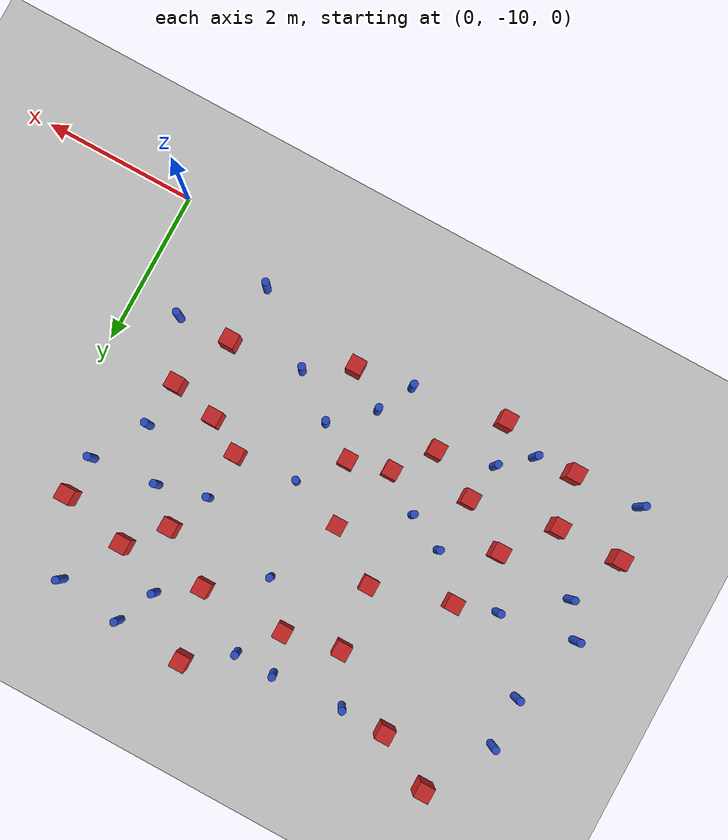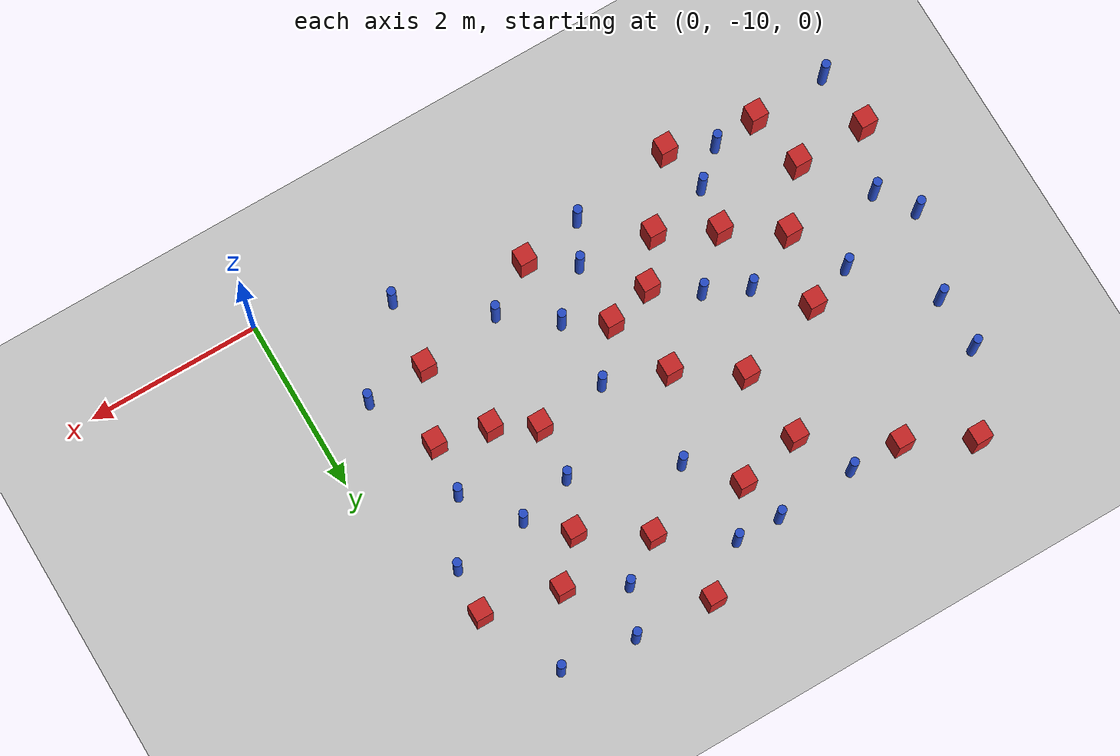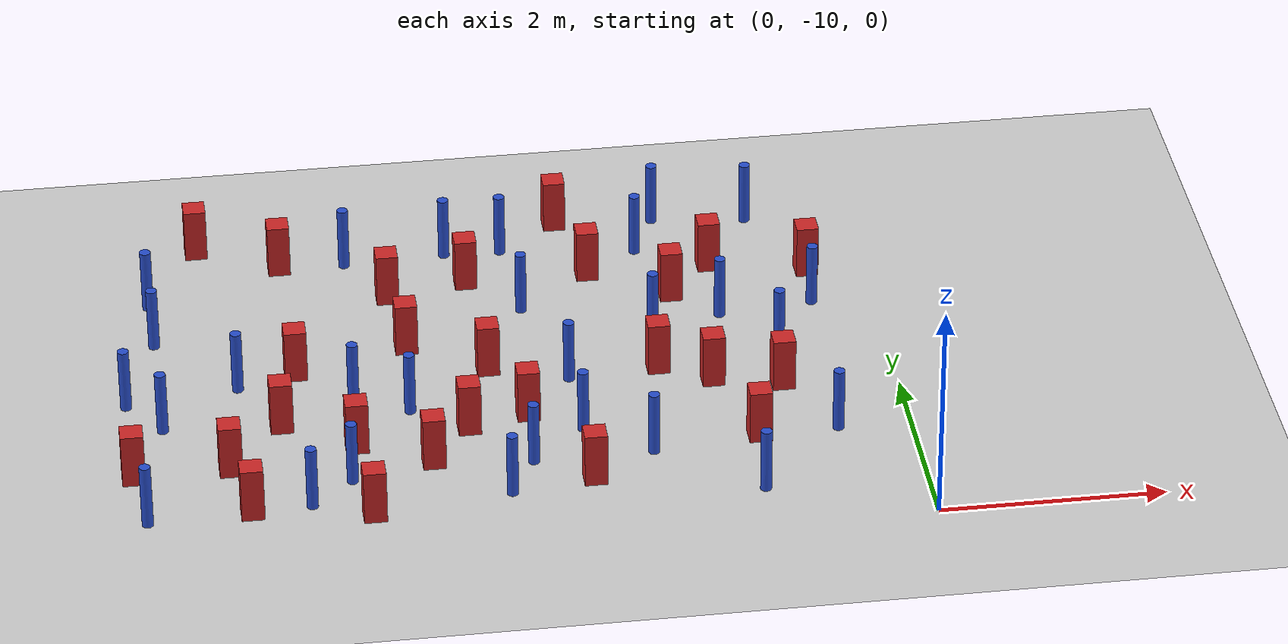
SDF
<sdf version="1.6">
 <world name="default">
  <model name="ground_plane">
   <static>1</static>
   <link name="link">
    <collision name="collision">
     <geometry><plane><normal>0 0 1</normal><size>100 100</size></plane></geometry>
     <surface><friction><ode><mu>100</mu><mu2>50</mu2></ode></friction></surface>
    </collision>
    <visual name="visual">
     <cast_shadows>0</cast_shadows>
     <geometry><plane><normal>0 0 1</normal><size>100 100</size></plane></geometry>
     <material>
      <ambient>1.0 1.0 1.0 1.0</ambient>
      <diffuse>0.8 0.8 0.8 1.0</diffuse>
      <specular>0.01 0.01 0.01 1.000000</specular>
     </material>
    </visual>
   </link>
  </model>
  <model name="pole_obstacle2">
   <static>true</static>
   <pose>-6.52942760812 -7.87029233997 7.38925637345e-09 -8.47170692796e-08 1.24976764786e-08 -1.74513093032e-07</pose>
   <link name="link">
    <pose>0 0 0.3 0 -0 0</pose>
    <inertial>
     <mass>1</mass>
     <inertia><ixx>0.145833</ixx><ixy>0</ixy><ixz>0</ixz><iyy>0.145833</iyy><iyz>0</iyz><izz>0.125</izz></inertia>
    </inertial>
    <collision name="collision">
     <geometry><cylinder><radius>0.05</radius><length>.6</length></cylinder></geometry>
    </collision>
    <visual name="visual">
     <geometry><cylinder><radius>0.05</radius><length>.6</length></cylinder></geometry>
     <material>
      <script><name>Gazebo/Blue</name><uri>file://media/materials/scripts/gazebo.material</uri></script>
     </material>
    </visual>
   </link>
  </model>
  <model name="square_post_obstacle4">
   <static>true</static>
   <pose>-1.02656893311 -7.87101364977 1.91545236811e-07 -7.35059704564e-06 1.12565212e-07 2.39332434364e-05</pose>
   <link name="link">
    <pose>0 0 0.25 0 -0 0</pose>
    <inertial>
     <mass>100</mass>
     <inertia>
      <ixx>0.166667</ixx>
      <ixy>0</ixy>
      <ixz>0</ixz>
      <iyy>0.166667</iyy>
      <iyz>0</iyz>
      <izz>0.166667</izz>
     </inertia>
    </inertial>
    <collision name="collision"><geometry><box><size>.2 .2 .5</size></box></geometry></collision>
    <visual name="visual">
     <geometry><box><size>.2 .2 .5</size></box></geometry>
     <material>
      <script><name>Gazebo/Red</name><uri>file://media/materials/scripts/gazebo.material</uri></script>
     </material>
    </visual>
   </link>
  </model>
  <model name="pole_obstacle6">
   <static>true</static>
   <pose>-4.82827708982 -7.62652021731 7.38925637345e-09 -8.47170692796e-08 1.24976764786e-08 -1.74513093032e-07</pose>
   <link name="link">
    <pose>0 0 0.3 0 -0 0</pose>
    <inertial>
     <mass>1</mass>
     <inertia><ixx>0.145833</ixx><ixy>0</ixy><ixz>0</ixz><iyy>0.145833</iyy><iyz>0</iyz><izz>0.125</izz></inertia>
    </inertial>
    <collision name="collision">
     <geometry><cylinder><radius>0.05</radius><length>.6</length></cylinder></geometry>
    </collision>
    <visual name="visual">
     <geometry><cylinder><radius>0.05</radius><length>.6</length></cylinder></geometry>
     <material>
      <script><name>Gazebo/Blue</name><uri>file://media/materials/scripts/gazebo.material</uri></script>
     </material>
    </visual>
   </link>
  </model>
  <model name="square_post_obstacle12">
   <static>true</static>
   <pose>-2.0900480813 -7.46458261331 1.91545236811e-07 -7.35059704564e-06 1.12565212e-07 2.39332434364e-05</pose>
   <link name="link">
    <pose>0 0 0.25 0 -0 0</pose>
    <inertial>
     <mass>100</mass>
     <inertia>
      <ixx>0.166667</ixx>
      <ixy>0</ixy>
      <ixz>0</ixz>
      <iyy>0.166667</iyy>
      <iyz>0</iyz>
      <izz>0.166667</izz>
     </inertia>
    </inertial>
    <collision name="collision"><geometry><box><size>.2 .2 .5</size></box></geometry></collision>
    <visual name="visual">
     <geometry><box><size>.2 .2 .5</size></box></geometry>
     <material>
      <script><name>Gazebo/Red</name><uri>file://media/materials/scripts/gazebo.material</uri></script>
     </material>
    </visual>
   </link>
  </model>
  <model name="square_post_obstacle15">
   <static>true</static>
   <pose>-3.32703613505 -8.05833563639 1.91545236811e-07 -7.35059704564e-06 1.12565212e-07 2.39332434364e-05</pose>
   <link name="link">
    <pose>0 0 0.25 0 -0 0</pose>
    <inertial>
     <mass>100</mass>
     <inertia>
      <ixx>0.166667</ixx>
      <ixy>0</ixy>
      <ixz>0</ixz>
      <iyy>0.166667</iyy>
      <iyz>0</iyz>
      <izz>0.166667</izz>
     </inertia>
    </inertial>
    <collision name="collision"><geometry><box><size>.2 .2 .5</size></box></geometry></collision>
    <visual name="visual">
     <geometry><box><size>.2 .2 .5</size></box></geometry>
     <material>
      <script><name>Gazebo/Red</name><uri>file://media/materials/scripts/gazebo.material</uri></script>
     </material>
    </visual>
   </link>
  </model>
  <model name="pole_obstacle12">
   <static>true</static>
   <pose>-2.89692893605 -7.53343433619 7.38925637345e-09 -8.47170692798e-08 1.24976765033e-08 -1.74513093019e-07</pose>
   <link name="link">
    <pose>0 0 0.3 0 -0 0</pose>
    <inertial>
     <mass>1</mass>
     <inertia><ixx>0.145833</ixx><ixy>0</ixy><ixz>0</ixz><iyy>0.145833</iyy><iyz>0</iyz><izz>0.125</izz></inertia>
    </inertial>
    <collision name="collision">
     <geometry><cylinder><radius>0.05</radius><length>.6</length></cylinder></geometry>
    </collision>
    <visual name="visual">
     <geometry><cylinder><radius>0.05</radius><length>.6</length></cylinder></geometry>
     <material>
      <script><name>Gazebo/Blue</name><uri>file://media/materials/scripts/gazebo.material</uri></script>
     </material>
    </visual>
   </link>
  </model>
  <model name="square_post_obstacle28">
   <static>true</static>
   <pose>-5.30732797405 -5.37208516619 1.91545236811e-07 -7.35059704564e-06 1.12565212e-07 2.39332434364e-05</pose>
   <link name="link">
    <pose>0 0 0.25 0 -0 0</pose>
    <inertial>
     <mass>100</mass>
     <inertia>
      <ixx>0.166667</ixx>
      <ixy>0</ixy>
      <ixz>0</ixz>
      <iyy>0.166667</iyy>
      <iyz>0</iyz>
      <izz>0.166667</izz>
     </inertia>
    </inertial>
    <collision name="collision"><geometry><box><size>.2 .2 .5</size></box></geometry></collision>
    <visual name="visual">
     <geometry><box><size>.2 .2 .5</size></box></geometry>
     <material>
      <script><name>Gazebo/Red</name><uri>file://media/materials/scripts/gazebo.material</uri></script>
     </material>
    </visual>
   </link>
  </model>
  <model name="pole_obstacle41">
   <static>true</static>
   <pose>-2.87050184182 -8.3369637446 7.38925637345e-09 -8.47170692793e-08 1.24976764408e-08 -1.74513093041e-07</pose>
   <link name="link">
    <pose>0 0 0.3 0 -0 0</pose>
    <inertial>
     <mass>1</mass>
     <inertia><ixx>0.145833</ixx><ixy>0</ixy><ixz>0</ixz><iyy>0.145833</iyy><iyz>0</iyz><izz>0.125</izz></inertia>
    </inertial>
    <collision name="collision">
     <geometry><cylinder><radius>0.05</radius><length>.6</length></cylinder></geometry>
    </collision>
    <visual name="visual">
     <geometry><cylinder><radius>0.05</radius><length>.6</length></cylinder></geometry>
     <material>
      <script><name>Gazebo/Blue</name><uri>file://media/materials/scripts/gazebo.material</uri></script>
     </material>
    </visual>
   </link>
  </model>
  <model name="square_post_obstacle42">
   <static>true</static>
   <pose>-1.8154099737 -6.29557564759 1.91545236811e-07 -7.35059704564e-06 1.12565212e-07 2.39332434364e-05</pose>
   <link name="link">
    <pose>0 0 0.25 0 -0 0</pose>
    <inertial>
     <mass>100</mass>
     <inertia>
      <ixx>0.166667</ixx>
      <ixy>0</ixy>
      <ixz>0</ixz>
      <iyy>0.166667</iyy>
      <iyz>0</iyz>
      <izz>0.166667</izz>
     </inertia>
    </inertial>
    <collision name="collision"><geometry><box><size>.2 .2 .5</size></box></geometry></collision>
    <visual name="visual">
     <geometry><box><size>.2 .2 .5</size></box></geometry>
     <material>
      <script><name>Gazebo/Red</name><uri>file://media/materials/scripts/gazebo.material</uri></script>
     </material>
    </visual>
   </link>
  </model>
  <model name="square_post_obstacle51">
   <static>true</static>
   <pose>-5.49275502538 -7.95544034483 1.91545236811e-07 -7.35059704564e-06 1.12565212e-07 2.39332434364e-05</pose>
   <link name="link">
    <pose>0 0 0.25 0 -0 0</pose>
    <inertial>
     <mass>100</mass>
     <inertia>
      <ixx>0.166667</ixx>
      <ixy>0</ixy>
      <ixz>0</ixz>
      <iyy>0.166667</iyy>
      <iyz>0</iyz>
      <izz>0.166667</izz>
     </inertia>
    </inertial>
    <collision name="collision"><geometry><box><size>.2 .2 .5</size></box></geometry></collision>
    <visual name="visual">
     <geometry><box><size>.2 .2 .5</size></box></geometry>
     <material>
      <script><name>Gazebo/Red</name><uri>file://media/materials/scripts/gazebo.material</uri></script>
     </material>
    </visual>
   </link>
  </model>
  <model name="pole_obstacle54">
   <static>true</static>
   <pose>-2.30270155775 -8.77156859263 7.38925637345e-09 -8.47170692793e-08 1.24976764408e-08 -1.74513093041e-07</pose>
   <link name="link">
    <pose>0 0 0.3 0 -0 0</pose>
    <inertial>
     <mass>1</mass>
     <inertia><ixx>0.145833</ixx><ixy>0</ixy><ixz>0</ixz><iyy>0.145833</iyy><iyz>0</iyz><izz>0.125</izz></inertia>
    </inertial>
    <collision name="collision">
     <geometry><cylinder><radius>0.05</radius><length>.6</length></cylinder></geometry>
    </collision>
    <visual name="visual">
     <geometry><cylinder><radius>0.05</radius><length>.6</length></cylinder></geometry>
     <material>
      <script><name>Gazebo/Blue</name><uri>file://media/materials/scripts/gazebo.material</uri></script>
     </material>
    </visual>
   </link>
  </model>
  <model name="square_post_obstacle58">
   <static>true</static>
   <pose>-4.28442002633 -6.84324078274 1.91545236811e-07 -7.35059704564e-06 1.12565212e-07 2.39332434364e-05</pose>
   <link name="link">
    <pose>0 0 0.25 0 -0 0</pose>
    <inertial>
     <mass>100</mass>
     <inertia>
      <ixx>0.166667</ixx>
      <ixy>0</ixy>
      <ixz>0</ixz>
      <iyy>0.166667</iyy>
      <iyz>0</iyz>
      <izz>0.166667</izz>
     </inertia>
    </inertial>
    <collision name="collision"><geometry><box><size>.2 .2 .5</size></box></geometry></collision>
    <visual name="visual">
     <geometry><box><size>.2 .2 .5</size></box></geometry>
     <material>
      <script><name>Gazebo/Red</name><uri>file://media/materials/scripts/gazebo.material</uri></script>
     </material>
    </visual>
   </link>
  </model>
  <model name="pole_obstacle59">
   <static>true</static>
   <pose>-0.558600514402 -6.58019926177 7.38925637345e-09 -8.471706928e-08 1.24976765086e-08 -1.74513093015e-07</pose>
   <link name="link">
    <pose>0 0 0.3 0 -0 0</pose>
    <inertial>
     <mass>1</mass>
     <inertia><ixx>0.145833</ixx><ixy>0</ixy><ixz>0</ixz><iyy>0.145833</iyy><iyz>0</iyz><izz>0.125</izz></inertia>
    </inertial>
    <collision name="collision">
     <geometry><cylinder><radius>0.05</radius><length>.6</length></cylinder></geometry>
    </collision>
    <visual name="visual">
     <geometry><cylinder><radius>0.05</radius><length>.6</length></cylinder></geometry>
     <material>
      <script><name>Gazebo/Blue</name><uri>file://media/materials/scripts/gazebo.material</uri></script>
     </material>
    </visual>
   </link>
  </model>
  <model name="pole_obstacle65">
   <static>true</static>
   <pose>-5.82789331894 -7.30684911246 7.38925637345e-09 -8.47170692796e-08 1.24976764786e-08 -1.74513093032e-07</pose>
   <link name="link">
    <pose>0 0 0.3 0 -0 0</pose>
    <inertial>
     <mass>1</mass>
     <inertia><ixx>0.145833</ixx><ixy>0</ixy><ixz>0</ixz><iyy>0.145833</iyy><iyz>0</iyz><izz>0.125</izz></inertia>
    </inertial>
    <collision name="collision">
     <geometry><cylinder><radius>0.05</radius><length>.6</length></cylinder></geometry>
    </collision>
    <visual name="visual">
     <geometry><cylinder><radius>0.05</radius><length>.6</length></cylinder></geometry>
     <material>
      <script><name>Gazebo/Blue</name><uri>file://media/materials/scripts/gazebo.material</uri></script>
     </material>
    </visual>
   </link>
  </model>
  <model name="pole_obstacle66">
   <static>true</static>
   <pose>-3.35977750524 -8.78382965833 7.38925637345e-09 -8.47170692793e-08 1.24976764408e-08 -1.74513093041e-07</pose>
   <link name="link">
    <pose>0 0 0.3 0 -0 0</pose>
    <inertial>
     <mass>1</mass>
     <inertia><ixx>0.145833</ixx><ixy>0</ixy><ixz>0</ixz><iyy>0.145833</iyy><iyz>0</iyz><izz>0.125</izz></inertia>
    </inertial>
    <collision name="collision">
     <geometry><cylinder><radius>0.05</radius><length>.6</length></cylinder></geometry>
    </collision>
    <visual name="visual">
     <geometry><cylinder><radius>0.05</radius><length>.6</length></cylinder></geometry>
     <material>
      <script><name>Gazebo/Blue</name><uri>file://media/materials/scripts/gazebo.material</uri></script>
     </material>
    </visual>
   </link>
  </model>
  <model name="square_post_obstacle75">
   <static>true</static>
   <pose>-2.72322112015 -4.94691890824 1.91545236811e-07 -7.35059704564e-06 1.12565212e-07 2.39332434364e-05</pose>
   <link name="link">
    <pose>0 0 0.25 0 -0 0</pose>
    <inertial>
     <mass>100</mass>
     <inertia>
      <ixx>0.166667</ixx>
      <ixy>0</ixy>
      <ixz>0</ixz>
      <iyy>0.166667</iyy>
      <iyz>0</iyz>
      <izz>0.166667</izz>
     </inertia>
    </inertial>
    <collision name="collision"><geometry><box><size>.2 .2 .5</size></box></geometry></collision>
    <visual name="visual">
     <geometry><box><size>.2 .2 .5</size></box></geometry>
     <material>
      <script><name>Gazebo/Red</name><uri>file://media/materials/scripts/gazebo.material</uri></script>
     </material>
    </visual>
   </link>
  </model>
  <model name="pole_obstacle71">
   <static>true</static>
   <pose>-4.34848106334 -7.85655685524 7.38925637345e-09 -8.47170692796e-08 1.24976764786e-08 -1.74513093032e-07</pose>
   <link name="link">
    <pose>0 0 0.3 0 -0 0</pose>
    <inertial>
     <mass>1</mass>
     <inertia><ixx>0.145833</ixx><ixy>0</ixy><ixz>0</ixz><iyy>0.145833</iyy><iyz>0</iyz><izz>0.125</izz></inertia>
    </inertial>
    <collision name="collision">
     <geometry><cylinder><radius>0.05</radius><length>.6</length></cylinder></geometry>
    </collision>
    <visual name="visual">
     <geometry><cylinder><radius>0.05</radius><length>.6</length></cylinder></geometry>
     <material>
      <script><name>Gazebo/Blue</name><uri>file://media/materials/scripts/gazebo.material</uri></script>
     </material>
    </visual>
   </link>
  </model>
  <model name="square_post_obstacle76">
   <static>true</static>
   <pose>-3.6413324319 -5.84310892848 1.91545236811e-07 -7.35059704564e-06 1.12565212e-07 2.39332434364e-05</pose>
   <link name="link">
    <pose>0 0 0.25 0 -0 0</pose>
    <inertial>
     <mass>100</mass>
     <inertia>
      <ixx>0.166667</ixx>
      <ixy>0</ixy>
      <ixz>0</ixz>
      <iyy>0.166667</iyy>
      <iyz>0</iyz>
      <izz>0.166667</izz>
     </inertia>
    </inertial>
    <collision name="collision"><geometry><box><size>.2 .2 .5</size></box></geometry></collision>
    <visual name="visual">
     <geometry><box><size>.2 .2 .5</size></box></geometry>
     <material>
      <script><name>Gazebo/Red</name><uri>file://media/materials/scripts/gazebo.material</uri></script>
     </material>
    </visual>
   </link>
  </model>
  <model name="pole_obstacle80">
   <static>true</static>
   <pose>-6.5350102175 -5.85643407897 7.38925637345e-09 -8.47170692796e-08 1.24976764786e-08 -1.74513093032e-07</pose>
   <link name="link">
    <pose>0 0 0.3 0 -0 0</pose>
    <inertial>
     <mass>1</mass>
     <inertia><ixx>0.145833</ixx><ixy>0</ixy><ixz>0</ixz><iyy>0.145833</iyy><iyz>0</iyz><izz>0.125</izz></inertia>
    </inertial>
    <collision name="collision">
     <geometry><cylinder><radius>0.05</radius><length>.6</length></cylinder></geometry>
    </collision>
    <visual name="visual">
     <geometry><cylinder><radius>0.05</radius><length>.6</length></cylinder></geometry>
     <material>
      <script><name>Gazebo/Blue</name><uri>file://media/materials/scripts/gazebo.material</uri></script>
     </material>
    </visual>
   </link>
  </model>
  <model name="pole_obstacle84">
   <static>true</static>
   <pose>-3.1885739638 -6.35535181915 7.38925637345e-09 -8.47170692794e-08 1.24976764468e-08 -1.7451309304e-07</pose>
   <link name="link">
    <pose>0 0 0.3 0 -0 0</pose>
    <inertial>
     <mass>1</mass>
     <inertia><ixx>0.145833</ixx><ixy>0</ixy><ixz>0</ixz><iyy>0.145833</iyy><iyz>0</iyz><izz>0.125</izz></inertia>
    </inertial>
    <collision name="collision">
     <geometry><cylinder><radius>0.05</radius><length>.6</length></cylinder></geometry>
    </collision>
    <visual name="visual">
     <geometry><cylinder><radius>0.05</radius><length>.6</length></cylinder></geometry>
     <material>
      <script><name>Gazebo/Blue</name><uri>file://media/materials/scripts/gazebo.material</uri></script>
     </material>
    </visual>
   </link>
  </model>
  <model name="pole_obstacle90">
   <static>true</static>
   <pose>-3.59813900486 -9.23827847991 7.38925637345e-09 -8.47170692799e-08 1.24976765012e-08 -1.74513093021e-07</pose>
   <link name="link">
    <pose>0 0 0.3 0 -0 0</pose>
    <inertial>
     <mass>1</mass>
     <inertia><ixx>0.145833</ixx><ixy>0</ixy><ixz>0</ixz><iyy>0.145833</iyy><iyz>0</iyz><izz>0.125</izz></inertia>
    </inertial>
    <collision name="collision">
     <geometry><cylinder><radius>0.05</radius><length>.6</length></cylinder></geometry>
    </collision>
    <visual name="visual">
     <geometry><cylinder><radius>0.05</radius><length>.6</length></cylinder></geometry>
     <material>
      <script><name>Gazebo/Blue</name><uri>file://media/materials/scripts/gazebo.material</uri></script>
     </material>
    </visual>
   </link>
  </model>
  <model name="pole_obstacle94">
   <static>true</static>
   <pose>-0.953558529923 -5.10209622008 7.38925637345e-09 -8.47170692799e-08 1.2497676509e-08 -1.74513093015e-07</pose>
   <link name="link">
    <pose>0 0 0.3 0 -0 0</pose>
    <inertial>
     <mass>1</mass>
     <inertia><ixx>0.145833</ixx><ixy>0</ixy><ixz>0</ixz><iyy>0.145833</iyy><iyz>0</iyz><izz>0.125</izz></inertia>
    </inertial>
    <collision name="collision">
     <geometry><cylinder><radius>0.05</radius><length>.6</length></cylinder></geometry>
    </collision>
    <visual name="visual">
     <geometry><cylinder><radius>0.05</radius><length>.6</length></cylinder></geometry>
     <material>
      <script><name>Gazebo/Blue</name><uri>file://media/materials/scripts/gazebo.material</uri></script>
     </material>
    </visual>
   </link>
  </model>
  <model name="pole_obstacle96">
   <static>true</static>
   <pose>-1.81101624796 -5.00029778088 7.38925637345e-09 -8.47170692799e-08 1.24976765033e-08 -1.74513093018e-07</pose>
   <link name="link">
    <pose>0 0 0.3 0 -0 0</pose>
    <inertial>
     <mass>1</mass>
     <inertia><ixx>0.145833</ixx><ixy>0</ixy><ixz>0</ixz><iyy>0.145833</iyy><iyz>0</iyz><izz>0.125</izz></inertia>
    </inertial>
    <collision name="collision">
     <geometry><cylinder><radius>0.05</radius><length>.6</length></cylinder></geometry>
    </collision>
    <visual name="visual">
     <geometry><cylinder><radius>0.05</radius><length>.6</length></cylinder></geometry>
     <material>
      <script><name>Gazebo/Blue</name><uri>file://media/materials/scripts/gazebo.material</uri></script>
     </material>
    </visual>
   </link>
  </model>
  <model name="pole_obstacle104">
   <static>true</static>
   <pose>-5.32611072504 -9.19990427921 7.38925637345e-09 -8.471706928e-08 1.24976765081e-08 -1.74513093015e-07</pose>
   <link name="link">
    <pose>0 0 0.3 0 -0 0</pose>
    <inertial>
     <mass>1</mass>
     <inertia><ixx>0.145833</ixx><ixy>0</ixy><ixz>0</ixz><iyy>0.145833</iyy><iyz>0</iyz><izz>0.125</izz></inertia>
    </inertial>
    <collision name="collision">
     <geometry><cylinder><radius>0.05</radius><length>.6</length></cylinder></geometry>
    </collision>
    <visual name="visual">
     <geometry><cylinder><radius>0.05</radius><length>.6</length></cylinder></geometry>
     <material>
      <script><name>Gazebo/Blue</name><uri>file://media/materials/scripts/gazebo.material</uri></script>
     </material>
    </visual>
   </link>
  </model>
  <model name="square_post_obstacle100">
   <static>true</static>
   <pose>-5.98387372745 -8.5668093741 1.91545236811e-07 -7.35059704564e-06 1.12565212e-07 2.39332434364e-05</pose>
   <link name="link">
    <pose>0 0 0.25 0 -0 0</pose>
    <inertial>
     <mass>100</mass>
     <inertia>
      <ixx>0.166667</ixx>
      <ixy>0</ixy>
      <ixz>0</ixz>
      <iyy>0.166667</iyy>
      <iyz>0</iyz>
      <izz>0.166667</izz>
     </inertia>
    </inertial>
    <collision name="collision"><geometry><box><size>.2 .2 .5</size></box></geometry></collision>
    <visual name="visual">
     <geometry><box><size>.2 .2 .5</size></box></geometry>
     <material>
      <script><name>Gazebo/Red</name><uri>file://media/materials/scripts/gazebo.material</uri></script>
     </material>
    </visual>
   </link>
  </model>
  <model name="square_post_obstacle102">
   <static>true</static>
   <pose>-5.84608042099 -9.24158830159 1.91545236811e-07 -7.35059704564e-06 1.12565212e-07 2.39332434364e-05</pose>
   <link name="link">
    <pose>0 0 0.25 0 -0 0</pose>
    <inertial>
     <mass>100</mass>
     <inertia>
      <ixx>0.166667</ixx>
      <ixy>0</ixy>
      <ixz>0</ixz>
      <iyy>0.166667</iyy>
      <iyz>0</iyz>
      <izz>0.166667</izz>
     </inertia>
    </inertial>
    <collision name="collision"><geometry><box><size>.2 .2 .5</size></box></geometry></collision>
    <visual name="visual">
     <geometry><box><size>.2 .2 .5</size></box></geometry>
     <material>
      <script><name>Gazebo/Red</name><uri>file://media/materials/scripts/gazebo.material</uri></script>
     </material>
    </visual>
   </link>
  </model>
  <model name="square_post_obstacle105">
   <static>true</static>
   <pose>-1.35549104408 -8.65738451665 1.91545236811e-07 -7.35059704564e-06 1.12565212e-07 2.39332434364e-05</pose>
   <link name="link">
    <pose>0 0 0.25 0 -0 0</pose>
    <inertial>
     <mass>100</mass>
     <inertia>
      <ixx>0.166667</ixx>
      <ixy>0</ixy>
      <ixz>0</ixz>
      <iyy>0.166667</iyy>
      <iyz>0</iyz>
      <izz>0.166667</izz>
     </inertia>
    </inertial>
    <collision name="collision"><geometry><box><size>.2 .2 .5</size></box></geometry></collision>
    <visual name="visual">
     <geometry><box><size>.2 .2 .5</size></box></geometry>
     <material>
      <script><name>Gazebo/Red</name><uri>file://media/materials/scripts/gazebo.material</uri></script>
     </material>
    </visual>
   </link>
  </model>
  <model name="pole_obstacle126">
   <static>true</static>
   <pose>-4.94934094296 -8.86743745569 7.38925637345e-09 -8.471706928e-08 1.24976765081e-08 -1.74513093015e-07</pose>
   <link name="link">
    <pose>0 0 0.3 0 -0 0</pose>
    <inertial>
     <mass>1</mass>
     <inertia><ixx>0.145833</ixx><ixy>0</ixy><ixz>0</ixz><iyy>0.145833</iyy><iyz>0</iyz><izz>0.125</izz></inertia>
    </inertial>
    <collision name="collision">
     <geometry><cylinder><radius>0.05</radius><length>.6</length></cylinder></geometry>
    </collision>
    <visual name="visual">
     <geometry><cylinder><radius>0.05</radius><length>.6</length></cylinder></geometry>
     <material>
      <script><name>Gazebo/Blue</name><uri>file://media/materials/scripts/gazebo.material</uri></script>
     </material>
    </visual>
   </link>
  </model>
  <model name="pole_obstacle127">
   <static>true</static>
   <pose>-1.42334205205 -9.46457747041 7.38925637345e-09 -8.47170692798e-08 1.24976764881e-08 -1.74513093027e-07</pose>
   <link name="link">
    <pose>0 0 0.3 0 -0 0</pose>
    <inertial>
     <mass>1</mass>
     <inertia><ixx>0.145833</ixx><ixy>0</ixy><ixz>0</ixz><iyy>0.145833</iyy><iyz>0</iyz><izz>0.125</izz></inertia>
    </inertial>
    <collision name="collision">
     <geometry><cylinder><radius>0.05</radius><length>.6</length></cylinder></geometry>
    </collision>
    <visual name="visual">
     <geometry><cylinder><radius>0.05</radius><length>.6</length></cylinder></geometry>
     <material>
      <script><name>Gazebo/Blue</name><uri>file://media/materials/scripts/gazebo.material</uri></script>
     </material>
    </visual>
   </link>
  </model>
  <model name="pole_obstacle129">
   <static>true</static>
   <pose>-3.26753161173 -5.34927331088 7.38925637345e-09 -8.47170692798e-08 1.24976765033e-08 -1.74513093019e-07</pose>
   <link name="link">
    <pose>0 0 0.3 0 -0 0</pose>
    <inertial>
     <mass>1</mass>
     <inertia><ixx>0.145833</ixx><ixy>0</ixy><ixz>0</ixz><iyy>0.145833</iyy><iyz>0</iyz><izz>0.125</izz></inertia>
    </inertial>
    <collision name="collision">
     <geometry><cylinder><radius>0.05</radius><length>.6</length></cylinder></geometry>
    </collision>
    <visual name="visual">
     <geometry><cylinder><radius>0.05</radius><length>.6</length></cylinder></geometry>
     <material>
      <script><name>Gazebo/Blue</name><uri>file://media/materials/scripts/gazebo.material</uri></script>
     </material>
    </visual>
   </link>
  </model>
  <model name="square_post_obstacle114">
   <static>true</static>
   <pose>-6.04269636869 -4.99461989997 1.91545236811e-07 -7.35059704564e-06 1.12565212e-07 2.39332434364e-05</pose>
   <link name="link">
    <pose>0 0 0.25 0 -0 0</pose>
    <inertial>
     <mass>100</mass>
     <inertia>
      <ixx>0.166667</ixx>
      <ixy>0</ixy>
      <ixz>0</ixz>
      <iyy>0.166667</iyy>
      <iyz>0</iyz>
      <izz>0.166667</izz>
     </inertia>
    </inertial>
    <collision name="collision"><geometry><box><size>.2 .2 .5</size></box></geometry></collision>
    <visual name="visual">
     <geometry><box><size>.2 .2 .5</size></box></geometry>
     <material>
      <script><name>Gazebo/Red</name><uri>file://media/materials/scripts/gazebo.material</uri></script>
     </material>
    </visual>
   </link>
  </model>
  <model name="square_post_obstacle119">
   <static>true</static>
   <pose>-4.8092906833 -9.41654826754 1.91545236811e-07 -7.35059704564e-06 1.12565212e-07 2.39332434364e-05</pose>
   <link name="link">
    <pose>0 0 0.25 0 -0 0</pose>
    <inertial>
     <mass>100</mass>
     <inertia>
      <ixx>0.166667</ixx>
      <ixy>0</ixy>
      <ixz>0</ixz>
      <iyy>0.166667</iyy>
      <iyz>0</iyz>
      <izz>0.166667</izz>
     </inertia>
    </inertial>
    <collision name="collision"><geometry><box><size>.2 .2 .5</size></box></geometry></collision>
    <visual name="visual">
     <geometry><box><size>.2 .2 .5</size></box></geometry>
     <material>
      <script><name>Gazebo/Red</name><uri>file://media/materials/scripts/gazebo.material</uri></script>
     </material>
    </visual>
   </link>
  </model>
  <model name="square_post_obstacle121">
   <static>true</static>
   <pose>-3.59764686636 -7.29087762361 1.91545236811e-07 -7.35059704564e-06 1.12565212e-07 2.39332434364e-05</pose>
   <link name="link">
    <pose>0 0 0.25 0 -0 0</pose>
    <inertial>
     <mass>100</mass>
     <inertia>
      <ixx>0.166667</ixx>
      <ixy>0</ixy>
      <ixz>0</ixz>
      <iyy>0.166667</iyy>
      <iyz>0</iyz>
      <izz>0.166667</izz>
     </inertia>
    </inertial>
    <collision name="collision"><geometry><box><size>.2 .2 .5</size></box></geometry></collision>
    <visual name="visual">
     <geometry><box><size>.2 .2 .5</size></box></geometry>
     <material>
      <script><name>Gazebo/Red</name><uri>file://media/materials/scripts/gazebo.material</uri></script>
     </material>
    </visual>
   </link>
  </model>
  <model name="square_post_obstacle129">
   <static>true</static>
   <pose>-1.40595606261 -5.83964326489 1.91545236811e-07 -7.35059704564e-06 1.12565212e-07 2.39332434364e-05</pose>
   <link name="link">
    <pose>0 0 0.25 0 -0 0</pose>
    <inertial>
     <mass>100</mass>
     <inertia>
      <ixx>0.166667</ixx>
      <ixy>0</ixy>
      <ixz>0</ixz>
      <iyy>0.166667</iyy>
      <iyz>0</iyz>
      <izz>0.166667</izz>
     </inertia>
    </inertial>
    <collision name="collision"><geometry><box><size>.2 .2 .5</size></box></geometry></collision>
    <visual name="visual">
     <geometry><box><size>.2 .2 .5</size></box></geometry>
     <material>
      <script><name>Gazebo/Red</name><uri>file://media/materials/scripts/gazebo.material</uri></script>
     </material>
    </visual>
   </link>
  </model>
  <model name="square_post_obstacle131">
   <static>true</static>
   <pose>-2.52613661955 -5.84702625969 1.91545236811e-07 -7.35059704564e-06 1.12565212e-07 2.39332434364e-05</pose>
   <link name="link">
    <pose>0 0 0.25 0 -0 0</pose>
    <inertial>
     <mass>100</mass>
     <inertia>
      <ixx>0.166667</ixx>
      <ixy>0</ixy>
      <ixz>0</ixz>
      <iyy>0.166667</iyy>
      <iyz>0</iyz>
      <izz>0.166667</izz>
     </inertia>
    </inertial>
    <collision name="collision"><geometry><box><size>.2 .2 .5</size></box></geometry></collision>
    <visual name="visual">
     <geometry><box><size>.2 .2 .5</size></box></geometry>
     <material>
      <script><name>Gazebo/Red</name><uri>file://media/materials/scripts/gazebo.material</uri></script>
     </material>
    </visual>
   </link>
  </model>
  <model name="square_post_obstacle139">
   <static>true</static>
   <pose>-4.37241083562 -5.99687854526 1.91545236811e-07 -7.35059704564e-06 1.12565212e-07 2.39332434364e-05</pose>
   <link name="link">
    <pose>0 0 0.25 0 -0 0</pose>
    <inertial>
     <mass>100</mass>
     <inertia>
      <ixx>0.166667</ixx>
      <ixy>0</ixy>
      <ixz>0</ixz>
      <iyy>0.166667</iyy>
      <iyz>0</iyz>
      <izz>0.166667</izz>
     </inertia>
    </inertial>
    <collision name="collision"><geometry><box><size>.2 .2 .5</size></box></geometry></collision>
    <visual name="visual">
     <geometry><box><size>.2 .2 .5</size></box></geometry>
     <material>
      <script><name>Gazebo/Red</name><uri>file://media/materials/scripts/gazebo.material</uri></script>
     </material>
    </visual>
   </link>
  </model>
  <model name="square_post_obstacle143">
   <static>true</static>
   <pose>-0.525659633213 -6.0435743981 1.91545236811e-07 -7.35059704564e-06 1.12565212e-07 2.39332434364e-05</pose>
   <link name="link">
    <pose>0 0 0.25 0 -0 0</pose>
    <inertial>
     <mass>100</mass>
     <inertia>
      <ixx>0.166667</ixx>
      <ixy>0</ixy>
      <ixz>0</ixz>
      <iyy>0.166667</iyy>
      <iyz>0</iyz>
      <izz>0.166667</izz>
     </inertia>
    </inertial>
    <collision name="collision"><geometry><box><size>.2 .2 .5</size></box></geometry></collision>
    <visual name="visual">
     <geometry><box><size>.2 .2 .5</size></box></geometry>
     <material>
      <script><name>Gazebo/Red</name><uri>file://media/materials/scripts/gazebo.material</uri></script>
     </material>
    </visual>
   </link>
  </model>
  <model name="pole_obstacle158">
   <static>true</static>
   <pose>-6.52022086904 -6.50460670721 7.38925637345e-09 -8.47170692796e-08 1.24976764786e-08 -1.74513093032e-07</pose>
   <link name="link">
    <pose>0 0 0.3 0 -0 0</pose>
    <inertial>
     <mass>1</mass>
     <inertia><ixx>0.145833</ixx><ixy>0</ixy><ixz>0</ixz><iyy>0.145833</iyy><iyz>0</iyz><izz>0.125</izz></inertia>
    </inertial>
    <collision name="collision">
     <geometry><cylinder><radius>0.05</radius><length>.6</length></cylinder></geometry>
    </collision>
    <visual name="visual">
     <geometry><cylinder><radius>0.05</radius><length>.6</length></cylinder></geometry>
     <material>
      <script><name>Gazebo/Blue</name><uri>file://media/materials/scripts/gazebo.material</uri></script>
     </material>
    </visual>
   </link>
  </model>
  <model name="square_post_obstacle152">
   <static>true</static>
   <pose>-4.86582133853 -8.35635013528 1.91545236811e-07 -7.35059704564e-06 1.12565212e-07 2.39332434364e-05</pose>
   <link name="link">
    <pose>0 0 0.25 0 -0 0</pose>
    <inertial>
     <mass>100</mass>
     <inertia>
      <ixx>0.166667</ixx>
      <ixy>0</ixy>
      <ixz>0</ixz>
      <iyy>0.166667</iyy>
      <iyz>0</iyz>
      <izz>0.166667</izz>
     </inertia>
    </inertial>
    <collision name="collision"><geometry><box><size>.2 .2 .5</size></box></geometry></collision>
    <visual name="visual">
     <geometry><box><size>.2 .2 .5</size></box></geometry>
     <material>
      <script><name>Gazebo/Red</name><uri>file://media/materials/scripts/gazebo.material</uri></script>
     </material>
    </visual>
   </link>
  </model>
  <model name="pole_obstacle163">
   <static>true</static>
   <pose>-3.78288659189 -5.33514154163 7.38925637345e-09 -8.47170692798e-08 1.24976765033e-08 -1.74513093019e-07</pose>
   <link name="link">
    <pose>0 0 0.3 0 -0 0</pose>
    <inertial>
     <mass>1</mass>
     <inertia><ixx>0.145833</ixx><ixy>0</ixy><ixz>0</ixz><iyy>0.145833</iyy><iyz>0</iyz><izz>0.125</izz></inertia>
    </inertial>
    <collision name="collision">
     <geometry><cylinder><radius>0.05</radius><length>.6</length></cylinder></geometry>
    </collision>
    <visual name="visual">
     <geometry><cylinder><radius>0.05</radius><length>.6</length></cylinder></geometry>
     <material>
      <script><name>Gazebo/Blue</name><uri>file://media/materials/scripts/gazebo.material</uri></script>
     </material>
    </visual>
   </link>
  </model>
  <model name="square_post_obstacle158">
   <static>true</static>
   <pose>-4.22449225365 -8.68447902423 1.91545236811e-07 -7.35059704564e-06 1.12565212e-07 2.39332434364e-05</pose>
   <link name="link">
    <pose>0 0 0.25 0 -0 0</pose>
    <inertial>
     <mass>100</mass>
     <inertia>
      <ixx>0.166667</ixx>
      <ixy>0</ixy>
      <ixz>0</ixz>
      <iyy>0.166667</iyy>
      <iyz>0</iyz>
      <izz>0.166667</izz>
     </inertia>
    </inertial>
    <collision name="collision"><geometry><box><size>.2 .2 .5</size></box></geometry></collision>
    <visual name="visual">
     <geometry><box><size>.2 .2 .5</size></box></geometry>
     <material>
      <script><name>Gazebo/Red</name><uri>file://media/materials/scripts/gazebo.material</uri></script>
     </material>
    </visual>
   </link>
  </model>
  <model name="pole_obstacle167">
   <static>true</static>
   <pose>-6.8267982819 -7.45893918394 7.38925637345e-09 -8.47170692796e-08 1.24976764786e-08 -1.74513093032e-07</pose>
   <link name="link">
    <pose>0 0 0.3 0 -0 0</pose>
    <inertial>
     <mass>1</mass>
     <inertia><ixx>0.145833</ixx><ixy>0</ixy><ixz>0</ixz><iyy>0.145833</iyy><iyz>0</iyz><izz>0.125</izz></inertia>
    </inertial>
    <collision name="collision">
     <geometry><cylinder><radius>0.05</radius><length>.6</length></cylinder></geometry>
    </collision>
    <visual name="visual">
     <geometry><cylinder><radius>0.05</radius><length>.6</length></cylinder></geometry>
     <material>
      <script><name>Gazebo/Blue</name><uri>file://media/materials/scripts/gazebo.material</uri></script>
     </material>
    </visual>
   </link>
  </model>
  <model name="pole_obstacle168">
   <static>true</static>
   <pose>-4.70911816522 -5.38500263617 7.38925637345e-09 -8.47170692796e-08 1.24976764786e-08 -1.74513093032e-07</pose>
   <link name="link">
    <pose>0 0 0.3 0 -0 0</pose>
    <inertial>
     <mass>1</mass>
     <inertia><ixx>0.145833</ixx><ixy>0</ixy><ixz>0</ixz><iyy>0.145833</iyy><iyz>0</iyz><izz>0.125</izz></inertia>
    </inertial>
    <collision name="collision">
     <geometry><cylinder><radius>0.05</radius><length>.6</length></cylinder></geometry>
    </collision>
    <visual name="visual">
     <geometry><cylinder><radius>0.05</radius><length>.6</length></cylinder></geometry>
     <material>
      <script><name>Gazebo/Blue</name><uri>file://media/materials/scripts/gazebo.material</uri></script>
     </material>
    </visual>
   </link>
  </model>
  <model name="pole_obstacle170">
   <static>true</static>
   <pose>-0.650334866451 -8.62669702935 7.38925637345e-09 -8.47170692797e-08 1.249767648e-08 -1.74513093032e-07</pose>
   <link name="link">
    <pose>0 0 0.3 0 -0 0</pose>
    <inertial>
     <mass>1</mass>
     <inertia><ixx>0.145833</ixx><ixy>0</ixy><ixz>0</ixz><iyy>0.145833</iyy><iyz>0</iyz><izz>0.125</izz></inertia>
    </inertial>
    <collision name="collision">
     <geometry><cylinder><radius>0.05</radius><length>.6</length></cylinder></geometry>
    </collision>
    <visual name="visual">
     <geometry><cylinder><radius>0.05</radius><length>.6</length></cylinder></geometry>
     <material>
      <script><name>Gazebo/Blue</name><uri>file://media/materials/scripts/gazebo.material</uri></script>
     </material>
    </visual>
   </link>
  </model>
  <model name="pole_obstacle178">
   <static>true</static>
   <pose>-2.03701232233 -5.50754557256 7.38925637345e-09 -8.471706928e-08 1.24976765103e-08 -1.74513093015e-07</pose>
   <link name="link">
    <pose>0 0 0.3 0 -0 0</pose>
    <inertial>
     <mass>1</mass>
     <inertia><ixx>0.145833</ixx><ixy>0</ixy><ixz>0</ixz><iyy>0.145833</iyy><iyz>0</iyz><izz>0.125</izz></inertia>
    </inertial>
    <collision name="collision">
     <geometry><cylinder><radius>0.05</radius><length>.6</length></cylinder></geometry>
    </collision>
    <visual name="visual">
     <geometry><cylinder><radius>0.05</radius><length>.6</length></cylinder></geometry>
     <material>
      <script><name>Gazebo/Blue</name><uri>file://media/materials/scripts/gazebo.material</uri></script>
     </material>
    </visual>
   </link>
  </model>
  <model name="pole_obstacle181">
   <static>true</static>
   <pose>-0.965492266756 -7.26971274927 7.38925637345e-09 -8.47170692799e-08 1.2497676509e-08 -1.74513093015e-07</pose>
   <link name="link">
    <pose>0 0 0.3 0 -0 0</pose>
    <inertial>
     <mass>1</mass>
     <inertia><ixx>0.145833</ixx><ixy>0</ixy><ixz>0</ixz><iyy>0.145833</iyy><iyz>0</iyz><izz>0.125</izz></inertia>
    </inertial>
    <collision name="collision">
     <geometry><cylinder><radius>0.05</radius><length>.6</length></cylinder></geometry>
    </collision>
    <visual name="visual">
     <geometry><cylinder><radius>0.05</radius><length>.6</length></cylinder></geometry>
     <material>
      <script><name>Gazebo/Blue</name><uri>file://media/materials/scripts/gazebo.material</uri></script>
     </material>
    </visual>
   </link>
  </model>
  <model name="square_post_obstacle181">
   <static>true</static>
   <pose>-1.63420395612 -7.72802523526 1.91545236811e-07 -7.35059704564e-06 1.12565212e-07 2.39332434364e-05</pose>
   <link name="link">
    <pose>0 0 0.25 0 -0 0</pose>
    <inertial>
     <mass>100</mass>
     <inertia>
      <ixx>0.166667</ixx>
      <ixy>0</ixy>
      <ixz>0</ixz>
      <iyy>0.166667</iyy>
      <iyz>0</iyz>
      <izz>0.166667</izz>
     </inertia>
    </inertial>
    <collision name="collision"><geometry><box><size>.2 .2 .5</size></box></geometry></collision>
    <visual name="visual">
     <geometry><box><size>.2 .2 .5</size></box></geometry>
     <material>
      <script><name>Gazebo/Red</name><uri>file://media/materials/scripts/gazebo.material</uri></script>
     </material>
    </visual>
   </link>
  </model>
  <model name="square_post_obstacle186">
   <static>true</static>
   <pose>-6.82705449148 -8.57893028258 1.91545236811e-07 -7.35059704564e-06 1.12565212e-07 2.39332434364e-05</pose>
   <link name="link">
    <pose>0 0 0.25 0 -0 0</pose>
    <inertial>
     <mass>100</mass>
     <inertia>
      <ixx>0.166667</ixx>
      <ixy>0</ixy>
      <ixz>0</ixz>
      <iyy>0.166667</iyy>
      <iyz>0</iyz>
      <izz>0.166667</izz>
     </inertia>
    </inertial>
    <collision name="collision"><geometry><box><size>.2 .2 .5</size></box></geometry></collision>
    <visual name="visual">
     <geometry><box><size>.2 .2 .5</size></box></geometry>
     <material>
      <script><name>Gazebo/Red</name><uri>file://media/materials/scripts/gazebo.material</uri></script>
     </material>
    </visual>
   </link>
  </model>
  <model name="square_post_obstacle194">
   <static>true</static>
   <pose>-3.86326766317 -8.20183165239 1.91545236811e-07 -7.35059704564e-06 1.12565212e-07 2.39332434364e-05</pose>
   <link name="link">
    <pose>0 0 0.25 0 -0 0</pose>
    <inertial>
     <mass>100</mass>
     <inertia>
      <ixx>0.166667</ixx>
      <ixy>0</ixy>
      <ixz>0</ixz>
      <iyy>0.166667</iyy>
      <iyz>0</iyz>
      <izz>0.166667</izz>
     </inertia>
    </inertial>
    <collision name="collision"><geometry><box><size>.2 .2 .5</size></box></geometry></collision>
    <visual name="visual">
     <geometry><box><size>.2 .2 .5</size></box></geometry>
     <material>
      <script><name>Gazebo/Red</name><uri>file://media/materials/scripts/gazebo.material</uri></script>
     </material>
    </visual>
   </link>
  </model>
  <model name="pole_obstacle200">
   <static>true</static>
   <pose>-1.41700397294 -6.67746356256 7.38925637345e-09 -8.47170692799e-08 1.24976765033e-08 -1.74513093018e-07</pose>
   <link name="link">
    <pose>0 0 0.3 0 -0 0</pose>
    <inertial>
     <mass>1</mass>
     <inertia><ixx>0.145833</ixx><ixy>0</ixy><ixz>0</ixz><iyy>0.145833</iyy><iyz>0</iyz><izz>0.125</izz></inertia>
    </inertial>
    <collision name="collision">
     <geometry><cylinder><radius>0.05</radius><length>.6</length></cylinder></geometry>
    </collision>
    <visual name="visual">
     <geometry><cylinder><radius>0.05</radius><length>.6</length></cylinder></geometry>
     <material>
      <script><name>Gazebo/Blue</name><uri>file://media/materials/scripts/gazebo.material</uri></script>
     </material>
    </visual>
   </link>
  </model>
  <model name="pole_obstacle202">
   <static>true</static>
   <pose>-2.05002907788 -6.83984039686 7.38925637345e-09 -8.47170692798e-08 1.24976765033e-08 -1.74513093019e-07</pose>
   <link name="link">
    <pose>0 0 0.3 0 -0 0</pose>
    <inertial>
     <mass>1</mass>
     <inertia><ixx>0.145833</ixx><ixy>0</ixy><ixz>0</ixz><iyy>0.145833</iyy><iyz>0</iyz><izz>0.125</izz></inertia>
    </inertial>
    <collision name="collision">
     <geometry><cylinder><radius>0.05</radius><length>.6</length></cylinder></geometry>
    </collision>
    <visual name="visual">
     <geometry><cylinder><radius>0.05</radius><length>.6</length></cylinder></geometry>
     <material>
      <script><name>Gazebo/Blue</name><uri>file://media/materials/scripts/gazebo.material</uri></script>
     </material>
    </visual>
   </link>
  </model>
  <model name="pole_obstacle204">
   <static>true</static>
   <pose>-6.74771182407 -9.2782977738 7.38925637345e-09 -8.471706928e-08 1.24976765081e-08 -1.74513093015e-07</pose>
   <link name="link">
    <pose>0 0 0.3 0 -0 0</pose>
    <inertial>
     <mass>1</mass>
     <inertia><ixx>0.145833</ixx><ixy>0</ixy><ixz>0</ixz><iyy>0.145833</iyy><iyz>0</iyz><izz>0.125</izz></inertia>
    </inertial>
    <collision name="collision">
     <geometry><cylinder><radius>0.05</radius><length>.6</length></cylinder></geometry>
    </collision>
    <visual name="visual">
     <geometry><cylinder><radius>0.05</radius><length>.6</length></cylinder></geometry>
     <material>
      <script><name>Gazebo/Blue</name><uri>file://media/materials/scripts/gazebo.material</uri></script>
     </material>
    </visual>
   </link>
  </model>
  <model name="square_post_obstacle206">
   <static>true</static>
   <pose>-5.30017562631 -7.14022703647 1.91545236811e-07 -7.35059704564e-06 1.12565212e-07 2.39332434364e-05</pose>
   <link name="link">
    <pose>0 0 0.25 0 -0 0</pose>
    <inertial>
     <mass>100</mass>
     <inertia>
      <ixx>0.166667</ixx>
      <ixy>0</ixy>
      <ixz>0</ixz>
      <iyy>0.166667</iyy>
      <iyz>0</iyz>
      <izz>0.166667</izz>
     </inertia>
    </inertial>
    <collision name="collision"><geometry><box><size>.2 .2 .5</size></box></geometry></collision>
    <visual name="visual">
     <geometry><box><size>.2 .2 .5</size></box></geometry>
     <material>
      <script><name>Gazebo/Red</name><uri>file://media/materials/scripts/gazebo.material</uri></script>
     </material>
    </visual>
   </link>
  </model>
  <model name="square_post_obstacle209">
   <static>true</static>
   <pose>-2.86730222492 -9.11757015946 1.91545236811e-07 -7.35059704564e-06 1.12565212e-07 2.39332434364e-05</pose>
   <link name="link">
    <pose>0 0 0.25 0 -0 0</pose>
    <inertial>
     <mass>100</mass>
     <inertia>
      <ixx>0.166667</ixx>
      <ixy>0</ixy>
      <ixz>0</ixz>
      <iyy>0.166667</iyy>
      <iyz>0</iyz>
      <izz>0.166667</izz>
     </inertia>
    </inertial>
    <collision name="collision"><geometry><box><size>.2 .2 .5</size></box></geometry></collision>
    <visual name="visual">
     <geometry><box><size>.2 .2 .5</size></box></geometry>
     <material>
      <script><name>Gazebo/Red</name><uri>file://media/materials/scripts/gazebo.material</uri></script>
     </material>
    </visual>
   </link>
  </model>
 </world>
</sdf>
